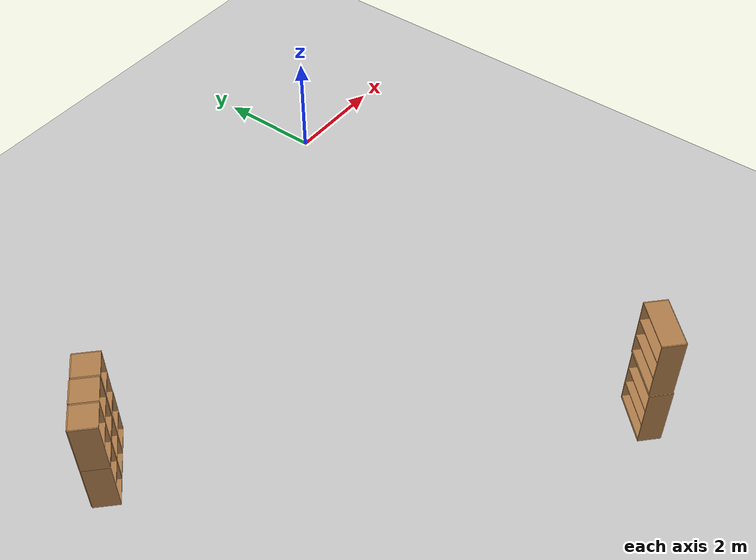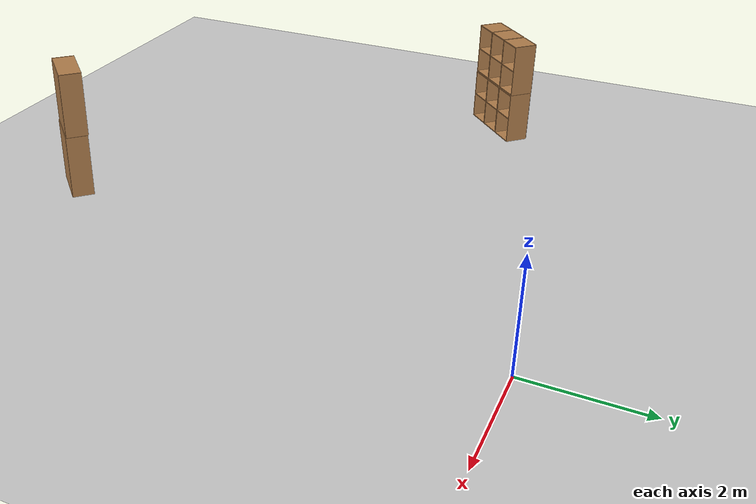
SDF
<sdf version="1.7">
 <world name="default">
  <model name="ground_plane">
   <static>1</static>
   <link name="link">
    <collision name="collision">
     <geometry><plane><normal>0 0 1</normal><size>100 100</size></plane></geometry>
     <surface><friction><ode><mu>100</mu><mu2>50</mu2></ode></friction></surface>
    </collision>
    <visual name="visual">
     <cast_shadows>0</cast_shadows>
     <geometry><plane><normal>0 0 1</normal><size>100 100</size></plane></geometry>
     <material>
      <script><uri>file://media/materials/scripts/gazebo.material</uri><name>Gazebo/Grey</name></script>
     </material>
    </visual>
   </link>
  </model>
  <model name="cabinet_clone_1_clone_1_clone">
   <static>1</static>
   <link name="cabinet_bottom_plate">
    <inertial>
     <pose>0 0 -1 0 -0 0</pose>
     <inertia><ixx>2.05</ixx><ixy>0</ixy><ixz>0</ixz><iyy>2.05</iyy><iyz>0</iyz><izz>2.05</izz></inertia>
     <mass>25</mass>
    </inertial>
    <collision name="cabinet_bottom_plate_geom">
     <pose>0 0 0.01 0 -0 0</pose>
     <geometry><box><size>0.45 0.45 0.02</size></box></geometry>
    </collision>
    <visual name="cabinet_bottom_plate_geom_visual">
     <pose>0 0 0.01 0 -0 0</pose>
     <geometry><box><size>0.45 0.45 0.02</size></box></geometry>
     <material>
      <script><uri>file://media/materials/scripts/gazebo.material</uri><name>Gazebo/Wood</name></script>
     </material>
    </visual>
    <collision name="cabinet_bottom_plate_geom_cabinet_back_plate">
     <pose>0.235 0 0.51 0 -0 0</pose>
     <geometry><box><size>0.02 0.45 1.02</size></box></geometry>
    </collision>
    <visual name="cabinet_bottom_plate_geom_cabinet_back_plate_visual">
     <pose>0.235 0 0.51 0 -0 0</pose>
     <geometry><box><size>0.02 0.45 1.02</size></box></geometry>
     <material>
      <script><uri>file://media/materials/scripts/gazebo.material</uri><name>Gazebo/Wood</name></script>
     </material>
    </visual>
    <collision name="cabinet_bottom_plate_geom_cabinet_left_plate">
     <pose>0 0.235 0.51 0 -0 0</pose>
     <geometry><box><size>0.45 0.02 1.02</size></box></geometry>
    </collision>
    <visual name="cabinet_bottom_plate_geom_cabinet_left_plate_visual">
     <pose>0 0.235 0.51 0 -0 0</pose>
     <geometry><box><size>0.45 0.02 1.02</size></box></geometry>
     <material>
      <script><uri>file://media/materials/scripts/gazebo.material</uri><name>Gazebo/Wood</name></script>
     </material>
    </visual>
    <collision name="cabinet_bottom_plate_geom_cabinet_middle_plate">
     <pose>0 0 0.51 0 -0 0</pose>
     <geometry><box><size>0.45 0.45 0.02</size></box></geometry>
    </collision>
    <visual name="cabinet_bottom_plate_geom_cabinet_middle_plate_visual">
     <pose>0 0 0.51 0 -0 0</pose>
     <geometry><box><size>0.45 0.45 0.02</size></box></geometry>
     <material>
      <script><uri>file://media/materials/scripts/gazebo.material</uri><name>Gazebo/Wood</name></script>
     </material>
    </visual>
    <collision name="cabinet_bottom_plate_geom_cabinet_right_plate">
     <pose>0 -0.235 0.51 0 -0 0</pose>
     <geometry><box><size>0.45 0.02 1.02</size></box></geometry>
    </collision>
    <visual name="cabinet_bottom_plate_geom_cabinet_right_plate_visual">
     <pose>0 -0.235 0.51 0 -0 0</pose>
     <geometry><box><size>0.45 0.02 1.02</size></box></geometry>
     <material>
      <script><uri>file://media/materials/scripts/gazebo.material</uri><name>Gazebo/Wood</name></script>
     </material>
    </visual>
    <collision name="cabinet_bottom_plate_geom_cabinet_top_plate">
     <pose>0 0 1.01 0 -0 0</pose>
     <geometry><box><size>0.45 0.45 0.02</size></box></geometry>
    </collision>
    <visual name="cabinet_bottom_plate_geom_cabinet_top_plate_visual">
     <pose>0 0 1.01 0 -0 0</pose>
     <geometry><box><size>0.45 0.45 0.02</size></box></geometry>
     <material>
      <script><uri>file://media/materials/scripts/gazebo.material</uri><name>Gazebo/Wood</name></script>
     </material>
    </visual>
   </link>
   <pose>-8.42291 -2.85046 1.02207 0 -0 2.35412</pose>
  </model>
  <model name="cabinet_clone_clone">
   <static>1</static>
   <link name="cabinet_bottom_plate">
    <inertial>
     <pose>0 0 -1 0 -0 0</pose>
     <inertia><ixx>2.05</ixx><ixy>0</ixy><ixz>0</ixz><iyy>2.05</iyy><iyz>0</iyz><izz>2.05</izz></inertia>
     <mass>25</mass>
    </inertial>
    <collision name="cabinet_bottom_plate_geom">
     <pose>0 0 0.01 0 -0 0</pose>
     <geometry><box><size>0.45 0.45 0.02</size></box></geometry>
    </collision>
    <visual name="cabinet_bottom_plate_geom_visual">
     <pose>0 0 0.01 0 -0 0</pose>
     <geometry><box><size>0.45 0.45 0.02</size></box></geometry>
     <material>
      <script><uri>file://media/materials/scripts/gazebo.material</uri><name>Gazebo/Wood</name></script>
     </material>
    </visual>
    <collision name="cabinet_bottom_plate_geom_cabinet_back_plate">
     <pose>0.235 0 0.51 0 -0 0</pose>
     <geometry><box><size>0.02 0.45 1.02</size></box></geometry>
    </collision>
    <visual name="cabinet_bottom_plate_geom_cabinet_back_plate_visual">
     <pose>0.235 0 0.51 0 -0 0</pose>
     <geometry><box><size>0.02 0.45 1.02</size></box></geometry>
     <material>
      <script><uri>file://media/materials/scripts/gazebo.material</uri><name>Gazebo/Wood</name></script>
     </material>
    </visual>
    <collision name="cabinet_bottom_plate_geom_cabinet_left_plate">
     <pose>0 0.235 0.51 0 -0 0</pose>
     <geometry><box><size>0.45 0.02 1.02</size></box></geometry>
    </collision>
    <visual name="cabinet_bottom_plate_geom_cabinet_left_plate_visual">
     <pose>0 0.235 0.51 0 -0 0</pose>
     <geometry><box><size>0.45 0.02 1.02</size></box></geometry>
     <material>
      <script><uri>file://media/materials/scripts/gazebo.material</uri><name>Gazebo/Wood</name></script>
     </material>
    </visual>
    <collision name="cabinet_bottom_plate_geom_cabinet_middle_plate">
     <pose>0 0 0.51 0 -0 0</pose>
     <geometry><box><size>0.45 0.45 0.02</size></box></geometry>
    </collision>
    <visual name="cabinet_bottom_plate_geom_cabinet_middle_plate_visual">
     <pose>0 0 0.51 0 -0 0</pose>
     <geometry><box><size>0.45 0.45 0.02</size></box></geometry>
     <material>
      <script><uri>file://media/materials/scripts/gazebo.material</uri><name>Gazebo/Wood</name></script>
     </material>
    </visual>
    <collision name="cabinet_bottom_plate_geom_cabinet_right_plate">
     <pose>0 -0.235 0.51 0 -0 0</pose>
     <geometry><box><size>0.45 0.02 1.02</size></box></geometry>
    </collision>
    <visual name="cabinet_bottom_plate_geom_cabinet_right_plate_visual">
     <pose>0 -0.235 0.51 0 -0 0</pose>
     <geometry><box><size>0.45 0.02 1.02</size></box></geometry>
     <material>
      <script><uri>file://media/materials/scripts/gazebo.material</uri><name>Gazebo/Wood</name></script>
     </material>
    </visual>
    <collision name="cabinet_bottom_plate_geom_cabinet_top_plate">
     <pose>0 0 1.01 0 -0 0</pose>
     <geometry><box><size>0.45 0.45 0.02</size></box></geometry>
    </collision>
    <visual name="cabinet_bottom_plate_geom_cabinet_top_plate_visual">
     <pose>0 0 1.01 0 -0 0</pose>
     <geometry><box><size>0.45 0.45 0.02</size></box></geometry>
     <material>
      <script><uri>file://media/materials/scripts/gazebo.material</uri><name>Gazebo/Wood</name></script>
     </material>
    </visual>
   </link>
   <pose>-8.42384 -2.85469 0 0 -0 2.35185</pose>
  </model>
  <model name="cabinet_clone_clone_clone">
   <static>1</static>
   <link name="cabinet_bottom_plate">
    <inertial>
     <pose>0 0 -1 0 -0 0</pose>
     <inertia><ixx>2.05</ixx><ixy>0</ixy><ixz>0</ixz><iyy>2.05</iyy><iyz>0</iyz><izz>2.05</izz></inertia>
     <mass>25</mass>
    </inertial>
    <collision name="cabinet_bottom_plate_geom">
     <pose>0 0 0.01 0 -0 0</pose>
     <geometry><box><size>0.45 0.45 0.02</size></box></geometry>
    </collision>
    <visual name="cabinet_bottom_plate_geom_visual">
     <pose>0 0 0.01 0 -0 0</pose>
     <geometry><box><size>0.45 0.45 0.02</size></box></geometry>
     <material>
      <script><uri>file://media/materials/scripts/gazebo.material</uri><name>Gazebo/Wood</name></script>
     </material>
    </visual>
    <collision name="cabinet_bottom_plate_geom_cabinet_back_plate">
     <pose>0.235 0 0.51 0 -0 0</pose>
     <geometry><box><size>0.02 0.45 1.02</size></box></geometry>
    </collision>
    <visual name="cabinet_bottom_plate_geom_cabinet_back_plate_visual">
     <pose>0.235 0 0.51 0 -0 0</pose>
     <geometry><box><size>0.02 0.45 1.02</size></box></geometry>
     <material>
      <script><uri>file://media/materials/scripts/gazebo.material</uri><name>Gazebo/Wood</name></script>
     </material>
    </visual>
    <collision name="cabinet_bottom_plate_geom_cabinet_left_plate">
     <pose>0 0.235 0.51 0 -0 0</pose>
     <geometry><box><size>0.45 0.02 1.02</size></box></geometry>
    </collision>
    <visual name="cabinet_bottom_plate_geom_cabinet_left_plate_visual">
     <pose>0 0.235 0.51 0 -0 0</pose>
     <geometry><box><size>0.45 0.02 1.02</size></box></geometry>
     <material>
      <script><uri>file://media/materials/scripts/gazebo.material</uri><name>Gazebo/Wood</name></script>
     </material>
    </visual>
    <collision name="cabinet_bottom_plate_geom_cabinet_middle_plate">
     <pose>0 0 0.51 0 -0 0</pose>
     <geometry><box><size>0.45 0.45 0.02</size></box></geometry>
    </collision>
    <visual name="cabinet_bottom_plate_geom_cabinet_middle_plate_visual">
     <pose>0 0 0.51 0 -0 0</pose>
     <geometry><box><size>0.45 0.45 0.02</size></box></geometry>
     <material>
      <script><uri>file://media/materials/scripts/gazebo.material</uri><name>Gazebo/Wood</name></script>
     </material>
    </visual>
    <collision name="cabinet_bottom_plate_geom_cabinet_right_plate">
     <pose>0 -0.235 0.51 0 -0 0</pose>
     <geometry><box><size>0.45 0.02 1.02</size></box></geometry>
    </collision>
    <visual name="cabinet_bottom_plate_geom_cabinet_right_plate_visual">
     <pose>0 -0.235 0.51 0 -0 0</pose>
     <geometry><box><size>0.45 0.02 1.02</size></box></geometry>
     <material>
      <script><uri>file://media/materials/scripts/gazebo.material</uri><name>Gazebo/Wood</name></script>
     </material>
    </visual>
    <collision name="cabinet_bottom_plate_geom_cabinet_top_plate">
     <pose>0 0 1.01 0 -0 0</pose>
     <geometry><box><size>0.45 0.45 0.02</size></box></geometry>
    </collision>
    <visual name="cabinet_bottom_plate_geom_cabinet_top_plate_visual">
     <pose>0 0 1.01 0 -0 0</pose>
     <geometry><box><size>0.45 0.45 0.02</size></box></geometry>
     <material>
      <script><uri>file://media/materials/scripts/gazebo.material</uri><name>Gazebo/Wood</name></script>
     </material>
    </visual>
   </link>
   <pose>-8.07556 -2.51353 0 0 -0 2.35185</pose>
  </model>
  <model name="cabinet_clone_clone_clone_0">
   <static>1</static>
   <link name="cabinet_bottom_plate">
    <inertial>
     <pose>0 0 -1 0 -0 0</pose>
     <inertia><ixx>2.05</ixx><ixy>0</ixy><ixz>0</ixz><iyy>2.05</iyy><iyz>0</iyz><izz>2.05</izz></inertia>
     <mass>25</mass>
    </inertial>
    <collision name="cabinet_bottom_plate_geom">
     <pose>0 0 0.01 0 -0 0</pose>
     <geometry><box><size>0.45 0.45 0.02</size></box></geometry>
    </collision>
    <visual name="cabinet_bottom_plate_geom_visual">
     <pose>0 0 0.01 0 -0 0</pose>
     <geometry><box><size>0.45 0.45 0.02</size></box></geometry>
     <material>
      <script><uri>file://media/materials/scripts/gazebo.material</uri><name>Gazebo/Wood</name></script>
     </material>
    </visual>
    <collision name="cabinet_bottom_plate_geom_cabinet_back_plate">
     <pose>0.235 0 0.51 0 -0 0</pose>
     <geometry><box><size>0.02 0.45 1.02</size></box></geometry>
    </collision>
    <visual name="cabinet_bottom_plate_geom_cabinet_back_plate_visual">
     <pose>0.235 0 0.51 0 -0 0</pose>
     <geometry><box><size>0.02 0.45 1.02</size></box></geometry>
     <material>
      <script><uri>file://media/materials/scripts/gazebo.material</uri><name>Gazebo/Wood</name></script>
     </material>
    </visual>
    <collision name="cabinet_bottom_plate_geom_cabinet_left_plate">
     <pose>0 0.235 0.51 0 -0 0</pose>
     <geometry><box><size>0.45 0.02 1.02</size></box></geometry>
    </collision>
    <visual name="cabinet_bottom_plate_geom_cabinet_left_plate_visual">
     <pose>0 0.235 0.51 0 -0 0</pose>
     <geometry><box><size>0.45 0.02 1.02</size></box></geometry>
     <material>
      <script><uri>file://media/materials/scripts/gazebo.material</uri><name>Gazebo/Wood</name></script>
     </material>
    </visual>
    <collision name="cabinet_bottom_plate_geom_cabinet_middle_plate">
     <pose>0 0 0.51 0 -0 0</pose>
     <geometry><box><size>0.45 0.45 0.02</size></box></geometry>
    </collision>
    <visual name="cabinet_bottom_plate_geom_cabinet_middle_plate_visual">
     <pose>0 0 0.51 0 -0 0</pose>
     <geometry><box><size>0.45 0.45 0.02</size></box></geometry>
     <material>
      <script><uri>file://media/materials/scripts/gazebo.material</uri><name>Gazebo/Wood</name></script>
     </material>
    </visual>
    <collision name="cabinet_bottom_plate_geom_cabinet_right_plate">
     <pose>0 -0.235 0.51 0 -0 0</pose>
     <geometry><box><size>0.45 0.02 1.02</size></box></geometry>
    </collision>
    <visual name="cabinet_bottom_plate_geom_cabinet_right_plate_visual">
     <pose>0 -0.235 0.51 0 -0 0</pose>
     <geometry><box><size>0.45 0.02 1.02</size></box></geometry>
     <material>
      <script><uri>file://media/materials/scripts/gazebo.material</uri><name>Gazebo/Wood</name></script>
     </material>
    </visual>
    <collision name="cabinet_bottom_plate_geom_cabinet_top_plate">
     <pose>0 0 1.01 0 -0 0</pose>
     <geometry><box><size>0.45 0.45 0.02</size></box></geometry>
    </collision>
    <visual name="cabinet_bottom_plate_geom_cabinet_top_plate_visual">
     <pose>0 0 1.01 0 -0 0</pose>
     <geometry><box><size>0.45 0.45 0.02</size></box></geometry>
     <material>
      <script><uri>file://media/materials/scripts/gazebo.material</uri><name>Gazebo/Wood</name></script>
     </material>
    </visual>
   </link>
   <pose>-7.72603 -2.16935 0 0 -0 2.35185</pose>
  </model>
  <model name="cabinet_clone_1_clone_1_clone_clone">
   <static>1</static>
   <link name="cabinet_bottom_plate">
    <inertial>
     <pose>0 0 -1 0 -0 0</pose>
     <inertia><ixx>2.05</ixx><ixy>0</ixy><ixz>0</ixz><iyy>2.05</iyy><iyz>0</iyz><izz>2.05</izz></inertia>
     <mass>25</mass>
    </inertial>
    <collision name="cabinet_bottom_plate_geom">
     <pose>0 0 0.01 0 -0 0</pose>
     <geometry><box><size>0.45 0.45 0.02</size></box></geometry>
    </collision>
    <visual name="cabinet_bottom_plate_geom_visual">
     <pose>0 0 0.01 0 -0 0</pose>
     <geometry><box><size>0.45 0.45 0.02</size></box></geometry>
     <material>
      <script><uri>file://media/materials/scripts/gazebo.material</uri><name>Gazebo/Wood</name></script>
     </material>
    </visual>
    <collision name="cabinet_bottom_plate_geom_cabinet_back_plate">
     <pose>0.235 0 0.51 0 -0 0</pose>
     <geometry><box><size>0.02 0.45 1.02</size></box></geometry>
    </collision>
    <visual name="cabinet_bottom_plate_geom_cabinet_back_plate_visual">
     <pose>0.235 0 0.51 0 -0 0</pose>
     <geometry><box><size>0.02 0.45 1.02</size></box></geometry>
     <material>
      <script><uri>file://media/materials/scripts/gazebo.material</uri><name>Gazebo/Wood</name></script>
     </material>
    </visual>
    <collision name="cabinet_bottom_plate_geom_cabinet_left_plate">
     <pose>0 0.235 0.51 0 -0 0</pose>
     <geometry><box><size>0.45 0.02 1.02</size></box></geometry>
    </collision>
    <visual name="cabinet_bottom_plate_geom_cabinet_left_plate_visual">
     <pose>0 0.235 0.51 0 -0 0</pose>
     <geometry><box><size>0.45 0.02 1.02</size></box></geometry>
     <material>
      <script><uri>file://media/materials/scripts/gazebo.material</uri><name>Gazebo/Wood</name></script>
     </material>
    </visual>
    <collision name="cabinet_bottom_plate_geom_cabinet_middle_plate">
     <pose>0 0 0.51 0 -0 0</pose>
     <geometry><box><size>0.45 0.45 0.02</size></box></geometry>
    </collision>
    <visual name="cabinet_bottom_plate_geom_cabinet_middle_plate_visual">
     <pose>0 0 0.51 0 -0 0</pose>
     <geometry><box><size>0.45 0.45 0.02</size></box></geometry>
     <material>
      <script><uri>file://media/materials/scripts/gazebo.material</uri><name>Gazebo/Wood</name></script>
     </material>
    </visual>
    <collision name="cabinet_bottom_plate_geom_cabinet_right_plate">
     <pose>0 -0.235 0.51 0 -0 0</pose>
     <geometry><box><size>0.45 0.02 1.02</size></box></geometry>
    </collision>
    <visual name="cabinet_bottom_plate_geom_cabinet_right_plate_visual">
     <pose>0 -0.235 0.51 0 -0 0</pose>
     <geometry><box><size>0.45 0.02 1.02</size></box></geometry>
     <material>
      <script><uri>file://media/materials/scripts/gazebo.material</uri><name>Gazebo/Wood</name></script>
     </material>
    </visual>
    <collision name="cabinet_bottom_plate_geom_cabinet_top_plate">
     <pose>0 0 1.01 0 -0 0</pose>
     <geometry><box><size>0.45 0.45 0.02</size></box></geometry>
    </collision>
    <visual name="cabinet_bottom_plate_geom_cabinet_top_plate_visual">
     <pose>0 0 1.01 0 -0 0</pose>
     <geometry><box><size>0.45 0.45 0.02</size></box></geometry>
     <material>
      <script><uri>file://media/materials/scripts/gazebo.material</uri><name>Gazebo/Wood</name></script>
     </material>
    </visual>
   </link>
   <pose>-8.08141 -2.50818 1.02207 0 -0 2.35412</pose>
  </model>
  <model name="cabinet_clone_1_clone_1_clone_clone_0">
   <static>1</static>
   <link name="cabinet_bottom_plate">
    <inertial>
     <pose>0 0 -1 0 -0 0</pose>
     <inertia><ixx>2.05</ixx><ixy>0</ixy><ixz>0</ixz><iyy>2.05</iyy><iyz>0</iyz><izz>2.05</izz></inertia>
     <mass>25</mass>
    </inertial>
    <collision name="cabinet_bottom_plate_geom">
     <pose>0 0 0.01 0 -0 0</pose>
     <geometry><box><size>0.45 0.45 0.02</size></box></geometry>
    </collision>
    <visual name="cabinet_bottom_plate_geom_visual">
     <pose>0 0 0.01 0 -0 0</pose>
     <geometry><box><size>0.45 0.45 0.02</size></box></geometry>
     <material>
      <script><uri>file://media/materials/scripts/gazebo.material</uri><name>Gazebo/Wood</name></script>
     </material>
    </visual>
    <collision name="cabinet_bottom_plate_geom_cabinet_back_plate">
     <pose>0.235 0 0.51 0 -0 0</pose>
     <geometry><box><size>0.02 0.45 1.02</size></box></geometry>
    </collision>
    <visual name="cabinet_bottom_plate_geom_cabinet_back_plate_visual">
     <pose>0.235 0 0.51 0 -0 0</pose>
     <geometry><box><size>0.02 0.45 1.02</size></box></geometry>
     <material>
      <script><uri>file://media/materials/scripts/gazebo.material</uri><name>Gazebo/Wood</name></script>
     </material>
    </visual>
    <collision name="cabinet_bottom_plate_geom_cabinet_left_plate">
     <pose>0 0.235 0.51 0 -0 0</pose>
     <geometry><box><size>0.45 0.02 1.02</size></box></geometry>
    </collision>
    <visual name="cabinet_bottom_plate_geom_cabinet_left_plate_visual">
     <pose>0 0.235 0.51 0 -0 0</pose>
     <geometry><box><size>0.45 0.02 1.02</size></box></geometry>
     <material>
      <script><uri>file://media/materials/scripts/gazebo.material</uri><name>Gazebo/Wood</name></script>
     </material>
    </visual>
    <collision name="cabinet_bottom_plate_geom_cabinet_middle_plate">
     <pose>0 0 0.51 0 -0 0</pose>
     <geometry><box><size>0.45 0.45 0.02</size></box></geometry>
    </collision>
    <visual name="cabinet_bottom_plate_geom_cabinet_middle_plate_visual">
     <pose>0 0 0.51 0 -0 0</pose>
     <geometry><box><size>0.45 0.45 0.02</size></box></geometry>
     <material>
      <script><uri>file://media/materials/scripts/gazebo.material</uri><name>Gazebo/Wood</name></script>
     </material>
    </visual>
    <collision name="cabinet_bottom_plate_geom_cabinet_right_plate">
     <pose>0 -0.235 0.51 0 -0 0</pose>
     <geometry><box><size>0.45 0.02 1.02</size></box></geometry>
    </collision>
    <visual name="cabinet_bottom_plate_geom_cabinet_right_plate_visual">
     <pose>0 -0.235 0.51 0 -0 0</pose>
     <geometry><box><size>0.45 0.02 1.02</size></box></geometry>
     <material>
      <script><uri>file://media/materials/scripts/gazebo.material</uri><name>Gazebo/Wood</name></script>
     </material>
    </visual>
    <collision name="cabinet_bottom_plate_geom_cabinet_top_plate">
     <pose>0 0 1.01 0 -0 0</pose>
     <geometry><box><size>0.45 0.45 0.02</size></box></geometry>
    </collision>
    <visual name="cabinet_bottom_plate_geom_cabinet_top_plate_visual">
     <pose>0 0 1.01 0 -0 0</pose>
     <geometry><box><size>0.45 0.45 0.02</size></box></geometry>
     <material>
      <script><uri>file://media/materials/scripts/gazebo.material</uri><name>Gazebo/Wood</name></script>
     </material>
    </visual>
   </link>
   <pose>-7.73213 -2.16791 1.02207 0 -0 2.35412</pose>
  </model>
  <model name="bookshelf_clone_0_clone">
   <static>1</static>
   <link name="link">
    <inertial><mass>1</mass></inertial>
    <collision name="back">
     <pose>0 0.005 0.6 0 -0 0</pose>
     <geometry><box><size>0.9 0.01 1.2</size></box></geometry>
    </collision>
    <visual name="visual1">
     <pose>0 0.005 0.6 0 -0 0</pose>
     <geometry><box><size>0.9 0.01 1.2</size></box></geometry>
     <material>
      <script><uri>file://media/materials/scripts/gazebo.material</uri><name>Gazebo/Wood</name></script>
     </material>
    </visual>
    <collision name="left_side">
     <pose>0.45 -0.195 0.6 0 -0 0</pose>
     <geometry><box><size>0.02 0.4 1.2</size></box></geometry>
    </collision>
    <visual name="visual2">
     <pose>0.45 -0.195 0.6 0 -0 0</pose>
     <geometry><box><size>0.02 0.4 1.2</size></box></geometry>
     <material>
      <script><uri>file://media/materials/scripts/gazebo.material</uri><name>Gazebo/Wood</name></script>
     </material>
    </visual>
    <collision name="right_side">
     <pose>-0.45 -0.195 0.6 0 -0 0</pose>
     <geometry><box><size>0.02 0.4 1.2</size></box></geometry>
    </collision>
    <visual name="visual3">
     <pose>-0.45 -0.195 0.6 0 -0 0</pose>
     <geometry><box><size>0.02 0.4 1.2</size></box></geometry>
     <material>
      <script><uri>file://media/materials/scripts/gazebo.material</uri><name>Gazebo/Wood</name></script>
     </material>
    </visual>
    <collision name="bottom">
     <pose>0 -0.195 0.03 0 -0 0</pose>
     <geometry><box><size>0.88 0.4 0.06</size></box></geometry>
    </collision>
    <visual name="visual4">
     <pose>0 -0.195 0.03 0 -0 0</pose>
     <geometry><box><size>0.88 0.4 0.06</size></box></geometry>
     <material>
      <script><uri>file://media/materials/scripts/gazebo.material</uri><name>Gazebo/Wood</name></script>
     </material>
    </visual>
    <collision name="top">
     <pose>0 -0.195 1.19 0 -0 0</pose>
     <geometry><box><size>0.88 0.4 0.02</size></box></geometry>
    </collision>
    <visual name="visual5">
     <pose>0 -0.195 1.19 0 -0 0</pose>
     <geometry><box><size>0.88 0.4 0.02</size></box></geometry>
     <material>
      <script><uri>file://media/materials/scripts/gazebo.material</uri><name>Gazebo/Wood</name></script>
     </material>
    </visual>
    <collision name="low_shelf">
     <pose>0 -0.195 0.43 0 -0 0</pose>
     <geometry><box><size>0.88 0.4 0.02</size></box></geometry>
    </collision>
    <visual name="visual6">
     <pose>0 -0.195 0.43 0 -0 0</pose>
     <geometry><box><size>0.88 0.4 0.02</size></box></geometry>
     <material>
      <script><uri>file://media/materials/scripts/gazebo.material</uri><name>Gazebo/Wood</name></script>
     </material>
    </visual>
    <collision name="high_shelf">
     <pose>0 -0.195 0.8 0 -0 0</pose>
     <geometry><box><size>0.88 0.4 0.02</size></box></geometry>
    </collision>
    <visual name="visual7">
     <pose>0 -0.195 0.8 0 -0 0</pose>
     <geometry><box><size>0.88 0.4 0.02</size></box></geometry>
     <material>
      <script><uri>file://media/materials/scripts/gazebo.material</uri><name>Gazebo/Wood</name></script>
     </material>
    </visual>
   </link>
   <pose>-1.91621 -9.06095 0 0 0 -2.34899</pose>
  </model>
  <model name="bookshelf_clone_clone_clone">
   <static>1</static>
   <link name="link">
    <inertial><mass>1</mass></inertial>
    <collision name="back">
     <pose>0 0.005 0.6 0 -0 0</pose>
     <geometry><box><size>0.9 0.01 1.2</size></box></geometry>
    </collision>
    <visual name="visual1">
     <pose>0 0.005 0.6 0 -0 0</pose>
     <geometry><box><size>0.9 0.01 1.2</size></box></geometry>
     <material>
      <script><uri>file://media/materials/scripts/gazebo.material</uri><name>Gazebo/Wood</name></script>
     </material>
    </visual>
    <collision name="left_side">
     <pose>0.45 -0.195 0.6 0 -0 0</pose>
     <geometry><box><size>0.02 0.4 1.2</size></box></geometry>
    </collision>
    <visual name="visual2">
     <pose>0.45 -0.195 0.6 0 -0 0</pose>
     <geometry><box><size>0.02 0.4 1.2</size></box></geometry>
     <material>
      <script><uri>file://media/materials/scripts/gazebo.material</uri><name>Gazebo/Wood</name></script>
     </material>
    </visual>
    <collision name="right_side">
     <pose>-0.45 -0.195 0.6 0 -0 0</pose>
     <geometry><box><size>0.02 0.4 1.2</size></box></geometry>
    </collision>
    <visual name="visual3">
     <pose>-0.45 -0.195 0.6 0 -0 0</pose>
     <geometry><box><size>0.02 0.4 1.2</size></box></geometry>
     <material>
      <script><uri>file://media/materials/scripts/gazebo.material</uri><name>Gazebo/Wood</name></script>
     </material>
    </visual>
    <collision name="bottom">
     <pose>0 -0.195 0.03 0 -0 0</pose>
     <geometry><box><size>0.88 0.4 0.06</size></box></geometry>
    </collision>
    <visual name="visual4">
     <pose>0 -0.195 0.03 0 -0 0</pose>
     <geometry><box><size>0.88 0.4 0.06</size></box></geometry>
     <material>
      <script><uri>file://media/materials/scripts/gazebo.material</uri><name>Gazebo/Wood</name></script>
     </material>
    </visual>
    <collision name="top">
     <pose>0 -0.195 1.19 0 -0 0</pose>
     <geometry><box><size>0.88 0.4 0.02</size></box></geometry>
    </collision>
    <visual name="visual5">
     <pose>0 -0.195 1.19 0 -0 0</pose>
     <geometry><box><size>0.88 0.4 0.02</size></box></geometry>
     <material>
      <script><uri>file://media/materials/scripts/gazebo.material</uri><name>Gazebo/Wood</name></script>
     </material>
    </visual>
    <collision name="low_shelf">
     <pose>0 -0.195 0.43 0 -0 0</pose>
     <geometry><box><size>0.88 0.4 0.02</size></box></geometry>
    </collision>
    <visual name="visual6">
     <pose>0 -0.195 0.43 0 -0 0</pose>
     <geometry><box><size>0.88 0.4 0.02</size></box></geometry>
     <material>
      <script><uri>file://media/materials/scripts/gazebo.material</uri><name>Gazebo/Wood</name></script>
     </material>
    </visual>
    <collision name="high_shelf">
     <pose>0 -0.195 0.8 0 -0 0</pose>
     <geometry><box><size>0.88 0.4 0.02</size></box></geometry>
    </collision>
    <visual name="visual7">
     <pose>0 -0.195 0.8 0 -0 0</pose>
     <geometry><box><size>0.88 0.4 0.02</size></box></geometry>
     <material>
      <script><uri>file://media/materials/scripts/gazebo.material</uri><name>Gazebo/Wood</name></script>
     </material>
    </visual>
   </link>
   <pose>-1.91788 -9.04662 1.20882 0 0 -2.34917</pose>
  </model>
 </world>
</sdf>
